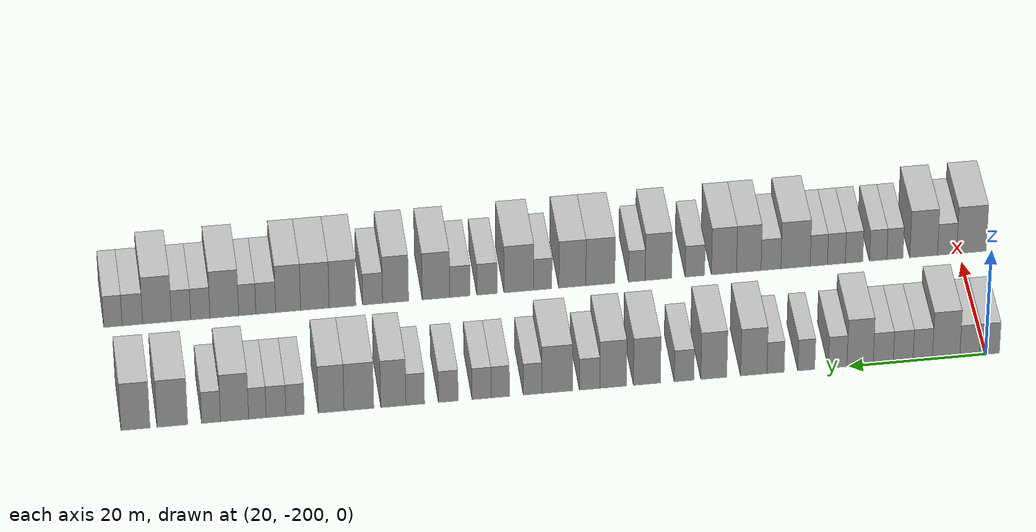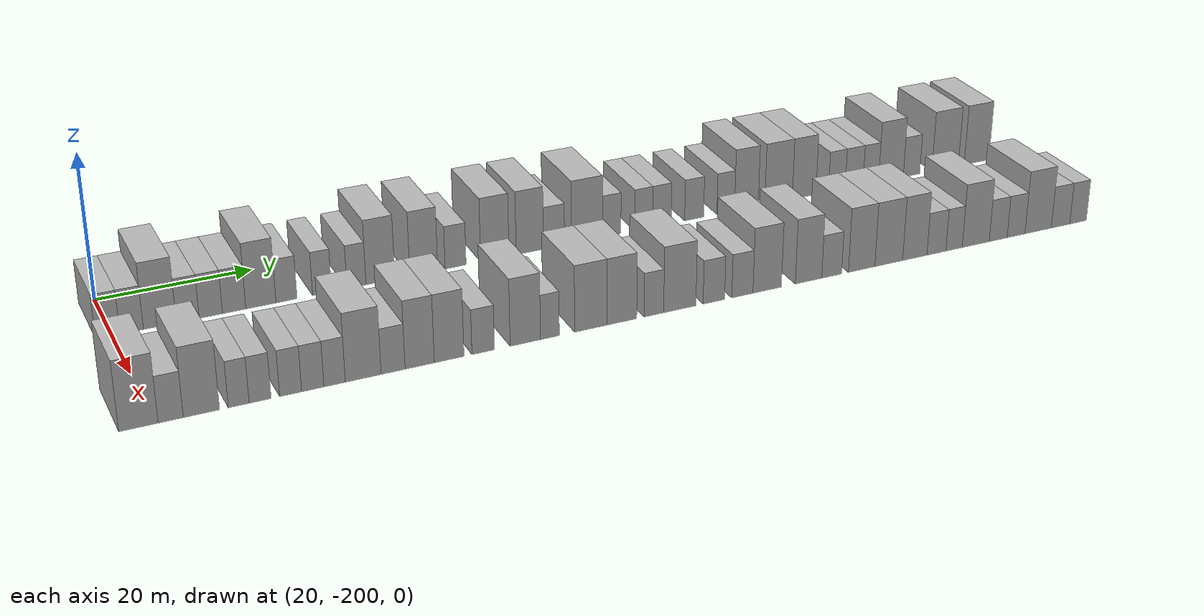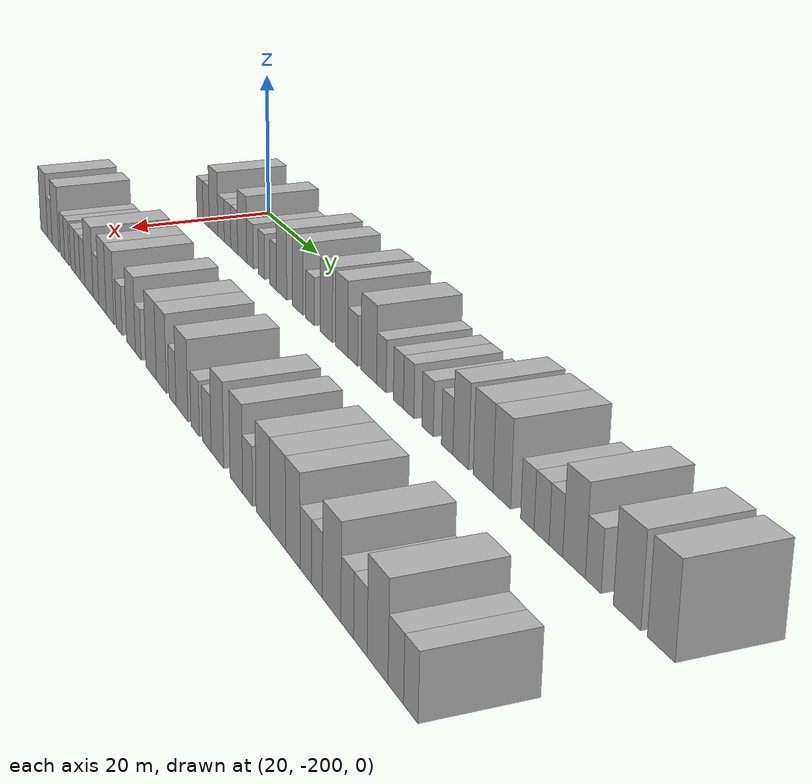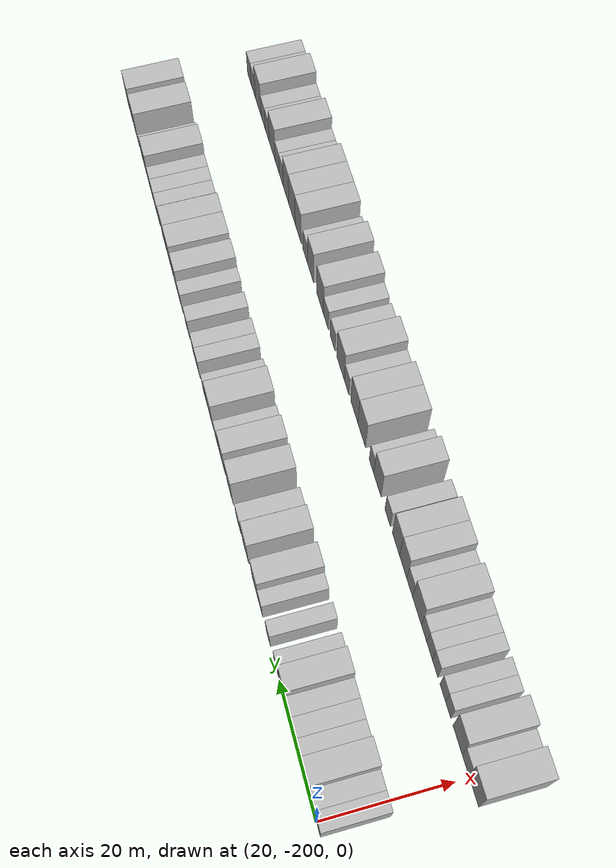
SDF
<sdf version="1.6">
 <world name="default">
  <model name="building_1">
   <static>1</static>
   <pose>25.0000 -200.5337 0 0.000000 0.000000 0.000000</pose>
   <link name="link">
    <pose>0 0 3.00 0 0 0</pose>
    <collision name="collision"><geometry><box><size>10.0000 2.9326 6.0000</size></box></geometry></collision>
    <visual name="visual">
     <cast_shadows>0</cast_shadows>
     <geometry><box><size>10.0000 2.9326 6.0000</size></box></geometry>
     <material>
      <script>
       <uri>model://HANNAS_wall/materials/scripts</uri>
       <uri>model://HANNAS_wall/materials/textures</uri>
       <name>vrc/HANNAS_wall</name>
      </script>
     </material>
    </visual>
   </link>
  </model>
  <model name="building_2">
   <static>1</static>
   <pose>25.0000 -197.6434 0 0.000000 0.000000 0.000000</pose>
   <link name="link">
    <pose>0 0 3.00 0 0 0</pose>
    <collision name="collision"><geometry><box><size>10.0000 2.8480 6.0000</size></box></geometry></collision>
    <visual name="visual">
     <cast_shadows>0</cast_shadows>
     <geometry><box><size>10.0000 2.8480 6.0000</size></box></geometry>
     <material>
      <script>
       <uri>model://HANNAS_wall/materials/scripts</uri>
       <uri>model://HANNAS_wall/materials/textures</uri>
       <name>vrc/HANNAS_wall</name>
      </script>
     </material>
    </visual>
   </link>
  </model>
  <model name="building_3">
   <static>1</static>
   <pose>25.0000 -194.2087 0 0.000000 0.000000 0.000000</pose>
   <link name="link">
    <pose>0 0 4.50 0 0 0</pose>
    <collision name="collision"><geometry><box><size>10.0000 4.0214 9.0000</size></box></geometry></collision>
    <visual name="visual">
     <cast_shadows>0</cast_shadows>
     <geometry><box><size>10.0000 4.0214 9.0000</size></box></geometry>
     <material>
      <script>
       <uri>model://HANNAS_wall/materials/scripts</uri>
       <uri>model://HANNAS_wall/materials/textures</uri>
       <name>vrc/HANNAS_wall</name>
      </script>
     </material>
    </visual>
   </link>
  </model>
  <model name="building_4">
   <static>1</static>
   <pose>25.0000 -190.7882 0 0.000000 0.000000 0.000000</pose>
   <link name="link">
    <pose>0 0 3.00 0 0 0</pose>
    <collision name="collision"><geometry><box><size>10.0000 2.8195 6.0000</size></box></geometry></collision>
    <visual name="visual">
     <cast_shadows>0</cast_shadows>
     <geometry><box><size>10.0000 2.8195 6.0000</size></box></geometry>
     <material>
      <script>
       <uri>model://HANNAS_wall/materials/scripts</uri>
       <uri>model://HANNAS_wall/materials/textures</uri>
       <name>vrc/HANNAS_wall</name>
      </script>
     </material>
    </visual>
   </link>
  </model>
  <model name="building_5">
   <static>1</static>
   <pose>25.0000 -187.9269 0 0.000000 0.000000 0.000000</pose>
   <link name="link">
    <pose>0 0 3.00 0 0 0</pose>
    <collision name="collision"><geometry><box><size>10.0000 2.9031 6.0000</size></box></geometry></collision>
    <visual name="visual">
     <cast_shadows>0</cast_shadows>
     <geometry><box><size>10.0000 2.9031 6.0000</size></box></geometry>
     <material>
      <script>
       <uri>model://HANNAS_wall/materials/scripts</uri>
       <uri>model://HANNAS_wall/materials/textures</uri>
       <name>vrc/HANNAS_wall</name>
      </script>
     </material>
    </visual>
   </link>
  </model>
  <model name="building_6">
   <static>1</static>
   <pose>25.0000 -185.0128 0 0.000000 0.000000 0.000000</pose>
   <link name="link">
    <pose>0 0 3.00 0 0 0</pose>
    <collision name="collision"><geometry><box><size>10.0000 2.9252 6.0000</size></box></geometry></collision>
    <visual name="visual">
     <cast_shadows>0</cast_shadows>
     <geometry><box><size>10.0000 2.9252 6.0000</size></box></geometry>
     <material>
      <script>
       <uri>model://HANNAS_wall/materials/scripts</uri>
       <uri>model://HANNAS_wall/materials/textures</uri>
       <name>vrc/HANNAS_wall</name>
      </script>
     </material>
    </visual>
   </link>
  </model>
  <model name="building_7">
   <static>1</static>
   <pose>25.0000 -181.6386 0 0.000000 0.000000 0.000000</pose>
   <link name="link">
    <pose>0 0 4.50 0 0 0</pose>
    <collision name="collision"><geometry><box><size>10.0000 3.8232 9.0000</size></box></geometry></collision>
    <visual name="visual">
     <cast_shadows>0</cast_shadows>
     <geometry><box><size>10.0000 3.8232 9.0000</size></box></geometry>
     <material>
      <script>
       <uri>model://HANNAS_wall/materials/scripts</uri>
       <uri>model://HANNAS_wall/materials/textures</uri>
       <name>vrc/HANNAS_wall</name>
      </script>
     </material>
    </visual>
   </link>
  </model>
  <model name="building_8">
   <static>1</static>
   <pose>25.0000 -178.3796 0 0.000000 0.000000 0.000000</pose>
   <link name="link">
    <pose>0 0 3.00 0 0 0</pose>
    <collision name="collision"><geometry><box><size>10.0000 2.6949 6.0000</size></box></geometry></collision>
    <visual name="visual">
     <cast_shadows>0</cast_shadows>
     <geometry><box><size>10.0000 2.6949 6.0000</size></box></geometry>
     <material>
      <script>
       <uri>model://HANNAS_wall/materials/scripts</uri>
       <uri>model://HANNAS_wall/materials/textures</uri>
       <name>vrc/HANNAS_wall</name>
      </script>
     </material>
    </visual>
   </link>
  </model>
  <model name="building_9">
   <static>1</static>
   <pose>25.0000 -173.8010 0 0.000000 0.000000 0.000000</pose>
   <link name="link">
    <pose>0 0 3.00 0 0 0</pose>
    <collision name="collision"><geometry><box><size>10.0000 2.4623 6.0000</size></box></geometry></collision>
    <visual name="visual">
     <cast_shadows>0</cast_shadows>
     <geometry><box><size>10.0000 2.4623 6.0000</size></box></geometry>
     <material>
      <script>
       <uri>model://HANNAS_wall/materials/scripts</uri>
       <uri>model://HANNAS_wall/materials/textures</uri>
       <name>vrc/HANNAS_wall</name>
      </script>
     </material>
    </visual>
   </link>
  </model>
  <model name="building_10">
   <static>1</static>
   <pose>25.0000 -169.3155 0 0.000000 0.000000 0.000000</pose>
   <link name="link">
    <pose>0 0 3.00 0 0 0</pose>
    <collision name="collision"><geometry><box><size>10.0000 2.5087 6.0000</size></box></geometry></collision>
    <visual name="visual">
     <cast_shadows>0</cast_shadows>
     <geometry><box><size>10.0000 2.5087 6.0000</size></box></geometry>
     <material>
      <script>
       <uri>model://HANNAS_wall/materials/scripts</uri>
       <uri>model://HANNAS_wall/materials/textures</uri>
       <name>vrc/HANNAS_wall</name>
      </script>
     </material>
    </visual>
   </link>
  </model>
  <model name="building_11">
   <static>1</static>
   <pose>25.0000 -166.1479 0 0.000000 0.000000 0.000000</pose>
   <link name="link">
    <pose>0 0 4.50 0 0 0</pose>
    <collision name="collision"><geometry><box><size>10.0000 3.8265 9.0000</size></box></geometry></collision>
    <visual name="visual">
     <cast_shadows>0</cast_shadows>
     <geometry><box><size>10.0000 3.8265 9.0000</size></box></geometry>
     <material>
      <script>
       <uri>model://HANNAS_wall/materials/scripts</uri>
       <uri>model://HANNAS_wall/materials/textures</uri>
       <name>vrc/HANNAS_wall</name>
      </script>
     </material>
    </visual>
   </link>
  </model>
  <model name="building_12">
   <static>1</static>
   <pose>25.0000 -160.3497 0 0.000000 0.000000 0.000000</pose>
   <link name="link">
    <pose>0 0 4.50 0 0 0</pose>
    <collision name="collision"><geometry><box><size>10.0000 3.7699 9.0000</size></box></geometry></collision>
    <visual name="visual">
     <cast_shadows>0</cast_shadows>
     <geometry><box><size>10.0000 3.7699 9.0000</size></box></geometry>
     <material>
      <script>
       <uri>model://HANNAS_wall/materials/scripts</uri>
       <uri>model://HANNAS_wall/materials/textures</uri>
       <name>vrc/HANNAS_wall</name>
      </script>
     </material>
    </visual>
   </link>
  </model>
  <model name="building_13">
   <static>1</static>
   <pose>25.0000 -156.0359 0 0.000000 0.000000 0.000000</pose>
   <link name="link">
    <pose>0 0 3.00 0 0 0</pose>
    <collision name="collision"><geometry><box><size>10.0000 2.8578 6.0000</size></box></geometry></collision>
    <visual name="visual">
     <cast_shadows>0</cast_shadows>
     <geometry><box><size>10.0000 2.8578 6.0000</size></box></geometry>
     <material>
      <script>
       <uri>model://HANNAS_wall/materials/scripts</uri>
       <uri>model://HANNAS_wall/materials/textures</uri>
       <name>vrc/HANNAS_wall</name>
      </script>
     </material>
    </visual>
   </link>
  </model>
  <model name="building_14">
   <static>1</static>
   <pose>25.0000 -150.6478 0 0.000000 0.000000 0.000000</pose>
   <link name="link">
    <pose>0 0 4.50 0 0 0</pose>
    <collision name="collision"><geometry><box><size>10.0000 3.9184 9.0000</size></box></geometry></collision>
    <visual name="visual">
     <cast_shadows>0</cast_shadows>
     <geometry><box><size>10.0000 3.9184 9.0000</size></box></geometry>
     <material>
      <script>
       <uri>model://HANNAS_wall/materials/scripts</uri>
       <uri>model://HANNAS_wall/materials/textures</uri>
       <name>vrc/HANNAS_wall</name>
      </script>
     </material>
    </visual>
   </link>
  </model>
  <model name="building_15">
   <static>1</static>
   <pose>25.0000 -145.7635 0 0.000000 0.000000 0.000000</pose>
   <link name="link">
    <pose>0 0 4.50 0 0 0</pose>
    <collision name="collision"><geometry><box><size>10.0000 3.8500 9.0000</size></box></geometry></collision>
    <visual name="visual">
     <cast_shadows>0</cast_shadows>
     <geometry><box><size>10.0000 3.8500 9.0000</size></box></geometry>
     <material>
      <script>
       <uri>model://HANNAS_wall/materials/scripts</uri>
       <uri>model://HANNAS_wall/materials/textures</uri>
       <name>vrc/HANNAS_wall</name>
      </script>
     </material>
    </visual>
   </link>
  </model>
  <model name="building_16">
   <static>1</static>
   <pose>25.0000 -142.3542 0 0.000000 0.000000 0.000000</pose>
   <link name="link">
    <pose>0 0 3.00 0 0 0</pose>
    <collision name="collision"><geometry><box><size>10.0000 2.9686 6.0000</size></box></geometry></collision>
    <visual name="visual">
     <cast_shadows>0</cast_shadows>
     <geometry><box><size>10.0000 2.9686 6.0000</size></box></geometry>
     <material>
      <script>
       <uri>model://HANNAS_wall/materials/scripts</uri>
       <uri>model://HANNAS_wall/materials/textures</uri>
       <name>vrc/HANNAS_wall</name>
      </script>
     </material>
    </visual>
   </link>
  </model>
  <model name="building_17">
   <static>1</static>
   <pose>25.0000 -137.6517 0 0.000000 0.000000 0.000000</pose>
   <link name="link">
    <pose>0 0 4.50 0 0 0</pose>
    <collision name="collision"><geometry><box><size>10.0000 4.4365 9.0000</size></box></geometry></collision>
    <visual name="visual">
     <cast_shadows>0</cast_shadows>
     <geometry><box><size>10.0000 4.4365 9.0000</size></box></geometry>
     <material>
      <script>
       <uri>model://HANNAS_wall/materials/scripts</uri>
       <uri>model://HANNAS_wall/materials/textures</uri>
       <name>vrc/HANNAS_wall</name>
      </script>
     </material>
    </visual>
   </link>
  </model>
  <model name="building_18">
   <static>1</static>
   <pose>25.0000 -134.0918 0 0.000000 0.000000 0.000000</pose>
   <link name="link">
    <pose>0 0 3.00 0 0 0</pose>
    <collision name="collision"><geometry><box><size>10.0000 2.6832 6.0000</size></box></geometry></collision>
    <visual name="visual">
     <cast_shadows>0</cast_shadows>
     <geometry><box><size>10.0000 2.6832 6.0000</size></box></geometry>
     <material>
      <script>
       <uri>model://HANNAS_wall/materials/scripts</uri>
       <uri>model://HANNAS_wall/materials/textures</uri>
       <name>vrc/HANNAS_wall</name>
      </script>
     </material>
    </visual>
   </link>
  </model>
  <model name="building_19">
   <static>1</static>
   <pose>25.0000 -129.4211 0 0.000000 0.000000 0.000000</pose>
   <link name="link">
    <pose>0 0 3.00 0 0 0</pose>
    <collision name="collision"><geometry><box><size>10.0000 2.6581 6.0000</size></box></geometry></collision>
    <visual name="visual">
     <cast_shadows>0</cast_shadows>
     <geometry><box><size>10.0000 2.6581 6.0000</size></box></geometry>
     <material>
      <script>
       <uri>model://HANNAS_wall/materials/scripts</uri>
       <uri>model://HANNAS_wall/materials/textures</uri>
       <name>vrc/HANNAS_wall</name>
      </script>
     </material>
    </visual>
   </link>
  </model>
  <model name="building_20">
   <static>1</static>
   <pose>25.0000 -126.7219 0 0.000000 0.000000 0.000000</pose>
   <link name="link">
    <pose>0 0 3.00 0 0 0</pose>
    <collision name="collision"><geometry><box><size>10.0000 2.7403 6.0000</size></box></geometry></collision>
    <visual name="visual">
     <cast_shadows>0</cast_shadows>
     <geometry><box><size>10.0000 2.7403 6.0000</size></box></geometry>
     <material>
      <script>
       <uri>model://HANNAS_wall/materials/scripts</uri>
       <uri>model://HANNAS_wall/materials/textures</uri>
       <name>vrc/HANNAS_wall</name>
      </script>
     </material>
    </visual>
   </link>
  </model>
  <model name="building_21">
   <static>1</static>
   <pose>25.0000 -121.9303 0 0.000000 0.000000 0.000000</pose>
   <link name="link">
    <pose>0 0 3.00 0 0 0</pose>
    <collision name="collision"><geometry><box><size>10.0000 2.8429 6.0000</size></box></geometry></collision>
    <visual name="visual">
     <cast_shadows>0</cast_shadows>
     <geometry><box><size>10.0000 2.8429 6.0000</size></box></geometry>
     <material>
      <script>
       <uri>model://HANNAS_wall/materials/scripts</uri>
       <uri>model://HANNAS_wall/materials/textures</uri>
       <name>vrc/HANNAS_wall</name>
      </script>
     </material>
    </visual>
   </link>
  </model>
  <model name="building_22">
   <static>1</static>
   <pose>25.0000 -117.1746 0 0.000000 0.000000 0.000000</pose>
   <link name="link">
    <pose>0 0 3.00 0 0 0</pose>
    <collision name="collision"><geometry><box><size>10.0000 2.6685 6.0000</size></box></geometry></collision>
    <visual name="visual">
     <cast_shadows>0</cast_shadows>
     <geometry><box><size>10.0000 2.6685 6.0000</size></box></geometry>
     <material>
      <script>
       <uri>model://HANNAS_wall/materials/scripts</uri>
       <uri>model://HANNAS_wall/materials/textures</uri>
       <name>vrc/HANNAS_wall</name>
      </script>
     </material>
    </visual>
   </link>
  </model>
  <model name="building_23">
   <static>1</static>
   <pose>25.0000 -114.0231 0 0.000000 0.000000 0.000000</pose>
   <link name="link">
    <pose>0 0 4.50 0 0 0</pose>
    <collision name="collision"><geometry><box><size>10.0000 3.6344 9.0000</size></box></geometry></collision>
    <visual name="visual">
     <cast_shadows>0</cast_shadows>
     <geometry><box><size>10.0000 3.6344 9.0000</size></box></geometry>
     <material>
      <script>
       <uri>model://HANNAS_wall/materials/scripts</uri>
       <uri>model://HANNAS_wall/materials/textures</uri>
       <name>vrc/HANNAS_wall</name>
      </script>
     </material>
    </visual>
   </link>
  </model>
  <model name="building_24">
   <static>1</static>
   <pose>25.0000 -109.0692 0 0.000000 0.000000 0.000000</pose>
   <link name="link">
    <pose>0 0 4.50 0 0 0</pose>
    <collision name="collision"><geometry><box><size>10.0000 4.2735 9.0000</size></box></geometry></collision>
    <visual name="visual">
     <cast_shadows>0</cast_shadows>
     <geometry><box><size>10.0000 4.2735 9.0000</size></box></geometry>
     <material>
      <script>
       <uri>model://HANNAS_wall/materials/scripts</uri>
       <uri>model://HANNAS_wall/materials/textures</uri>
       <name>vrc/HANNAS_wall</name>
      </script>
     </material>
    </visual>
   </link>
  </model>
  <model name="building_25">
   <static>1</static>
   <pose>25.0000 -105.0818 0 0.000000 0.000000 0.000000</pose>
   <link name="link">
    <pose>0 0 4.50 0 0 0</pose>
    <collision name="collision"><geometry><box><size>10.0000 3.7013 9.0000</size></box></geometry></collision>
    <visual name="visual">
     <cast_shadows>0</cast_shadows>
     <geometry><box><size>10.0000 3.7013 9.0000</size></box></geometry>
     <material>
      <script>
       <uri>model://HANNAS_wall/materials/scripts</uri>
       <uri>model://HANNAS_wall/materials/textures</uri>
       <name>vrc/HANNAS_wall</name>
      </script>
     </material>
    </visual>
   </link>
  </model>
  <model name="building_26">
   <static>1</static>
   <pose>25.0000 -99.9082 0 0.000000 0.000000 0.000000</pose>
   <link name="link">
    <pose>0 0 3.00 0 0 0</pose>
    <collision name="collision"><geometry><box><size>10.0000 2.6459 6.0000</size></box></geometry></collision>
    <visual name="visual">
     <cast_shadows>0</cast_shadows>
     <geometry><box><size>10.0000 2.6459 6.0000</size></box></geometry>
     <material>
      <script>
       <uri>model://HANNAS_wall/materials/scripts</uri>
       <uri>model://HANNAS_wall/materials/textures</uri>
       <name>vrc/HANNAS_wall</name>
      </script>
     </material>
    </visual>
   </link>
  </model>
  <model name="building_27">
   <static>1</static>
   <pose>25.0000 -97.1660 0 0.000000 0.000000 0.000000</pose>
   <link name="link">
    <pose>0 0 3.00 0 0 0</pose>
    <collision name="collision"><geometry><box><size>10.0000 2.8386 6.0000</size></box></geometry></collision>
    <visual name="visual">
     <cast_shadows>0</cast_shadows>
     <geometry><box><size>10.0000 2.8386 6.0000</size></box></geometry>
     <material>
      <script>
       <uri>model://HANNAS_wall/materials/scripts</uri>
       <uri>model://HANNAS_wall/materials/textures</uri>
       <name>vrc/HANNAS_wall</name>
      </script>
     </material>
    </visual>
   </link>
  </model>
  <model name="building_28">
   <static>1</static>
   <pose>25.0000 -94.4889 0 0.000000 0.000000 0.000000</pose>
   <link name="link">
    <pose>0 0 3.00 0 0 0</pose>
    <collision name="collision"><geometry><box><size>10.0000 2.5156 6.0000</size></box></geometry></collision>
    <visual name="visual">
     <cast_shadows>0</cast_shadows>
     <geometry><box><size>10.0000 2.5156 6.0000</size></box></geometry>
     <material>
      <script>
       <uri>model://HANNAS_wall/materials/scripts</uri>
       <uri>model://HANNAS_wall/materials/textures</uri>
       <name>vrc/HANNAS_wall</name>
      </script>
     </material>
    </visual>
   </link>
  </model>
  <model name="building_29">
   <static>1</static>
   <pose>25.0000 -91.2158 0 0.000000 0.000000 0.000000</pose>
   <link name="link">
    <pose>0 0 4.50 0 0 0</pose>
    <collision name="collision"><geometry><box><size>10.0000 4.0306 9.0000</size></box></geometry></collision>
    <visual name="visual">
     <cast_shadows>0</cast_shadows>
     <geometry><box><size>10.0000 4.0306 9.0000</size></box></geometry>
     <material>
      <script>
       <uri>model://HANNAS_wall/materials/scripts</uri>
       <uri>model://HANNAS_wall/materials/textures</uri>
       <name>vrc/HANNAS_wall</name>
      </script>
     </material>
    </visual>
   </link>
  </model>
  <model name="building_30">
   <static>1</static>
   <pose>25.0000 -87.8514 0 0.000000 0.000000 0.000000</pose>
   <link name="link">
    <pose>0 0 3.00 0 0 0</pose>
    <collision name="collision"><geometry><box><size>10.0000 2.6983 6.0000</size></box></geometry></collision>
    <visual name="visual">
     <cast_shadows>0</cast_shadows>
     <geometry><box><size>10.0000 2.6983 6.0000</size></box></geometry>
     <material>
      <script>
       <uri>model://HANNAS_wall/materials/scripts</uri>
       <uri>model://HANNAS_wall/materials/textures</uri>
       <name>vrc/HANNAS_wall</name>
      </script>
     </material>
    </visual>
   </link>
  </model>
  <model name="building_31">
   <static>1</static>
   <pose>25.0000 -82.3057 0 0.000000 0.000000 0.000000</pose>
   <link name="link">
    <pose>0 0 4.50 0 0 0</pose>
    <collision name="collision"><geometry><box><size>10.0000 4.3931 9.0000</size></box></geometry></collision>
    <visual name="visual">
     <cast_shadows>0</cast_shadows>
     <geometry><box><size>10.0000 4.3931 9.0000</size></box></geometry>
     <material>
      <script>
       <uri>model://HANNAS_wall/materials/scripts</uri>
       <uri>model://HANNAS_wall/materials/textures</uri>
       <name>vrc/HANNAS_wall</name>
      </script>
     </material>
    </visual>
   </link>
  </model>
  <model name="building_32">
   <static>1</static>
   <pose>25.0000 -77.0357 0 0.000000 0.000000 0.000000</pose>
   <link name="link">
    <pose>0 0 4.50 0 0 0</pose>
    <collision name="collision"><geometry><box><size>10.0000 4.1468 9.0000</size></box></geometry></collision>
    <visual name="visual">
     <cast_shadows>0</cast_shadows>
     <geometry><box><size>10.0000 4.1468 9.0000</size></box></geometry>
     <material>
      <script>
       <uri>model://HANNAS_wall/materials/scripts</uri>
       <uri>model://HANNAS_wall/materials/textures</uri>
       <name>vrc/HANNAS_wall</name>
      </script>
     </material>
    </visual>
   </link>
  </model>
  <model name="building_98">
   <static>1</static>
   <pose>47.0000 -201.8006 0 0.000000 0.000000 0.000000</pose>
   <link name="link">
    <pose>0 0 4.50 0 0 0</pose>
    <collision name="collision"><geometry><box><size>10.0000 4.3989 9.0000</size></box></geometry></collision>
    <visual name="visual">
     <cast_shadows>0</cast_shadows>
     <geometry><box><size>10.0000 4.3989 9.0000</size></box></geometry>
     <material>
      <script>
       <uri>model://HANNAS_wall/materials/scripts</uri>
       <uri>model://HANNAS_wall/materials/textures</uri>
       <name>vrc/HANNAS_wall</name>
      </script>
     </material>
    </visual>
   </link>
  </model>
  <model name="building_99">
   <static>1</static>
   <pose>47.0000 -198.1780 0 0.000000 0.000000 0.000000</pose>
   <link name="link">
    <pose>0 0 3.00 0 0 0</pose>
    <collision name="collision"><geometry><box><size>10.0000 2.8463 6.0000</size></box></geometry></collision>
    <visual name="visual">
     <cast_shadows>0</cast_shadows>
     <geometry><box><size>10.0000 2.8463 6.0000</size></box></geometry>
     <material>
      <script>
       <uri>model://HANNAS_wall/materials/scripts</uri>
       <uri>model://HANNAS_wall/materials/textures</uri>
       <name>vrc/HANNAS_wall</name>
      </script>
     </material>
    </visual>
   </link>
  </model>
  <model name="building_100">
   <static>1</static>
   <pose>47.0000 -194.6894 0 0.000000 0.000000 0.000000</pose>
   <link name="link">
    <pose>0 0 4.50 0 0 0</pose>
    <collision name="collision"><geometry><box><size>10.0000 4.1309 9.0000</size></box></geometry></collision>
    <visual name="visual">
     <cast_shadows>0</cast_shadows>
     <geometry><box><size>10.0000 4.1309 9.0000</size></box></geometry>
     <material>
      <script>
       <uri>model://HANNAS_wall/materials/scripts</uri>
       <uri>model://HANNAS_wall/materials/textures</uri>
       <name>vrc/HANNAS_wall</name>
      </script>
     </material>
    </visual>
   </link>
  </model>
  <model name="building_101">
   <static>1</static>
   <pose>47.0000 -190.4196 0 0.000000 0.000000 0.000000</pose>
   <link name="link">
    <pose>0 0 3.00 0 0 0</pose>
    <collision name="collision"><geometry><box><size>10.0000 2.4088 6.0000</size></box></geometry></collision>
    <visual name="visual">
     <cast_shadows>0</cast_shadows>
     <geometry><box><size>10.0000 2.4088 6.0000</size></box></geometry>
     <material>
      <script>
       <uri>model://HANNAS_wall/materials/scripts</uri>
       <uri>model://HANNAS_wall/materials/textures</uri>
       <name>vrc/HANNAS_wall</name>
      </script>
     </material>
    </visual>
   </link>
  </model>
  <model name="building_102">
   <static>1</static>
   <pose>47.0000 -187.9353 0 0.000000 0.000000 0.000000</pose>
   <link name="link">
    <pose>0 0 3.00 0 0 0</pose>
    <collision name="collision"><geometry><box><size>10.0000 2.5597 6.0000</size></box></geometry></collision>
    <visual name="visual">
     <cast_shadows>0</cast_shadows>
     <geometry><box><size>10.0000 2.5597 6.0000</size></box></geometry>
     <material>
      <script>
       <uri>model://HANNAS_wall/materials/scripts</uri>
       <uri>model://HANNAS_wall/materials/textures</uri>
       <name>vrc/HANNAS_wall</name>
      </script>
     </material>
    </visual>
   </link>
  </model>
  <model name="building_103">
   <static>1</static>
   <pose>47.0000 -184.3582 0 0.000000 0.000000 0.000000</pose>
   <link name="link">
    <pose>0 0 3.00 0 0 0</pose>
    <collision name="collision"><geometry><box><size>10.0000 2.5946 6.0000</size></box></geometry></collision>
    <visual name="visual">
     <cast_shadows>0</cast_shadows>
     <geometry><box><size>10.0000 2.5946 6.0000</size></box></geometry>
     <material>
      <script>
       <uri>model://HANNAS_wall/materials/scripts</uri>
       <uri>model://HANNAS_wall/materials/textures</uri>
       <name>vrc/HANNAS_wall</name>
      </script>
     </material>
    </visual>
   </link>
  </model>
  <model name="building_104">
   <static>1</static>
   <pose>47.0000 -181.7380 0 0.000000 0.000000 0.000000</pose>
   <link name="link">
    <pose>0 0 3.00 0 0 0</pose>
    <collision name="collision"><geometry><box><size>10.0000 2.6458 6.0000</size></box></geometry></collision>
    <visual name="visual">
     <cast_shadows>0</cast_shadows>
     <geometry><box><size>10.0000 2.6458 6.0000</size></box></geometry>
     <material>
      <script>
       <uri>model://HANNAS_wall/materials/scripts</uri>
       <uri>model://HANNAS_wall/materials/textures</uri>
       <name>vrc/HANNAS_wall</name>
      </script>
     </material>
    </visual>
   </link>
  </model>
  <model name="building_105">
   <static>1</static>
   <pose>47.0000 -179.1327 0 0.000000 0.000000 0.000000</pose>
   <link name="link">
    <pose>0 0 3.00 0 0 0</pose>
    <collision name="collision"><geometry><box><size>10.0000 2.5648 6.0000</size></box></geometry></collision>
    <visual name="visual">
     <cast_shadows>0</cast_shadows>
     <geometry><box><size>10.0000 2.5648 6.0000</size></box></geometry>
     <material>
      <script>
       <uri>model://HANNAS_wall/materials/scripts</uri>
       <uri>model://HANNAS_wall/materials/textures</uri>
       <name>vrc/HANNAS_wall</name>
      </script>
     </material>
    </visual>
   </link>
  </model>
  <model name="building_106">
   <static>1</static>
   <pose>47.0000 -175.6829 0 0.000000 0.000000 0.000000</pose>
   <link name="link">
    <pose>0 0 4.50 0 0 0</pose>
    <collision name="collision"><geometry><box><size>10.0000 4.3349 9.0000</size></box></geometry></collision>
    <visual name="visual">
     <cast_shadows>0</cast_shadows>
     <geometry><box><size>10.0000 4.3349 9.0000</size></box></geometry>
     <material>
      <script>
       <uri>model://HANNAS_wall/materials/scripts</uri>
       <uri>model://HANNAS_wall/materials/textures</uri>
       <name>vrc/HANNAS_wall</name>
      </script>
     </material>
    </visual>
   </link>
  </model>
  <model name="building_107">
   <static>1</static>
   <pose>47.0000 -172.0464 0 0.000000 0.000000 0.000000</pose>
   <link name="link">
    <pose>0 0 3.00 0 0 0</pose>
    <collision name="collision"><geometry><box><size>10.0000 2.9381 6.0000</size></box></geometry></collision>
    <visual name="visual">
     <cast_shadows>0</cast_shadows>
     <geometry><box><size>10.0000 2.9381 6.0000</size></box></geometry>
     <material>
      <script>
       <uri>model://HANNAS_wall/materials/scripts</uri>
       <uri>model://HANNAS_wall/materials/textures</uri>
       <name>vrc/HANNAS_wall</name>
      </script>
     </material>
    </visual>
   </link>
  </model>
  <model name="building_108">
   <static>1</static>
   <pose>47.0000 -168.7672 0 0.000000 0.000000 0.000000</pose>
   <link name="link">
    <pose>0 0 4.50 0 0 0</pose>
    <collision name="collision"><geometry><box><size>10.0000 3.6203 9.0000</size></box></geometry></collision>
    <visual name="visual">
     <cast_shadows>0</cast_shadows>
     <geometry><box><size>10.0000 3.6203 9.0000</size></box></geometry>
     <material>
      <script>
       <uri>model://HANNAS_wall/materials/scripts</uri>
       <uri>model://HANNAS_wall/materials/textures</uri>
       <name>vrc/HANNAS_wall</name>
      </script>
     </material>
    </visual>
   </link>
  </model>
  <model name="building_109">
   <static>1</static>
   <pose>47.0000 -165.1005 0 0.000000 0.000000 0.000000</pose>
   <link name="link">
    <pose>0 0 4.50 0 0 0</pose>
    <collision name="collision"><geometry><box><size>10.0000 3.7129 9.0000</size></box></geometry></collision>
    <visual name="visual">
     <cast_shadows>0</cast_shadows>
     <geometry><box><size>10.0000 3.7129 9.0000</size></box></geometry>
     <material>
      <script>
       <uri>model://HANNAS_wall/materials/scripts</uri>
       <uri>model://HANNAS_wall/materials/textures</uri>
       <name>vrc/HANNAS_wall</name>
      </script>
     </material>
    </visual>
   </link>
  </model>
  <model name="building_110">
   <static>1</static>
   <pose>47.0000 -160.8135 0 0.000000 0.000000 0.000000</pose>
   <link name="link">
    <pose>0 0 3.00 0 0 0</pose>
    <collision name="collision"><geometry><box><size>10.0000 2.8611 6.0000</size></box></geometry></collision>
    <visual name="visual">
     <cast_shadows>0</cast_shadows>
     <geometry><box><size>10.0000 2.8611 6.0000</size></box></geometry>
     <material>
      <script>
       <uri>model://HANNAS_wall/materials/scripts</uri>
       <uri>model://HANNAS_wall/materials/textures</uri>
       <name>vrc/HANNAS_wall</name>
      </script>
     </material>
    </visual>
   </link>
  </model>
  <model name="building_111">
   <static>1</static>
   <pose>47.0000 -155.4287 0 0.000000 0.000000 0.000000</pose>
   <link name="link">
    <pose>0 0 4.50 0 0 0</pose>
    <collision name="collision"><geometry><box><size>10.0000 3.9085 9.0000</size></box></geometry></collision>
    <visual name="visual">
     <cast_shadows>0</cast_shadows>
     <geometry><box><size>10.0000 3.9085 9.0000</size></box></geometry>
     <material>
      <script>
       <uri>model://HANNAS_wall/materials/scripts</uri>
       <uri>model://HANNAS_wall/materials/textures</uri>
       <name>vrc/HANNAS_wall</name>
      </script>
     </material>
    </visual>
   </link>
  </model>
  <model name="building_112">
   <static>1</static>
   <pose>47.0000 -152.2467 0 0.000000 0.000000 0.000000</pose>
   <link name="link">
    <pose>0 0 3.00 0 0 0</pose>
    <collision name="collision"><geometry><box><size>10.0000 2.4556 6.0000</size></box></geometry></collision>
    <visual name="visual">
     <cast_shadows>0</cast_shadows>
     <geometry><box><size>10.0000 2.4556 6.0000</size></box></geometry>
     <material>
      <script>
       <uri>model://HANNAS_wall/materials/scripts</uri>
       <uri>model://HANNAS_wall/materials/textures</uri>
       <name>vrc/HANNAS_wall</name>
      </script>
     </material>
    </visual>
   </link>
  </model>
  <model name="building_113">
   <static>1</static>
   <pose>47.0000 -146.8812 0 0.000000 0.000000 0.000000</pose>
   <link name="link">
    <pose>0 0 4.50 0 0 0</pose>
    <collision name="collision"><geometry><box><size>10.0000 4.2753 9.0000</size></box></geometry></collision>
    <visual name="visual">
     <cast_shadows>0</cast_shadows>
     <geometry><box><size>10.0000 4.2753 9.0000</size></box></geometry>
     <material>
      <script>
       <uri>model://HANNAS_wall/materials/scripts</uri>
       <uri>model://HANNAS_wall/materials/textures</uri>
       <name>vrc/HANNAS_wall</name>
      </script>
     </material>
    </visual>
   </link>
  </model>
  <model name="building_114">
   <static>1</static>
   <pose>47.0000 -142.7487 0 0.000000 0.000000 0.000000</pose>
   <link name="link">
    <pose>0 0 4.50 0 0 0</pose>
    <collision name="collision"><geometry><box><size>10.0000 3.9898 9.0000</size></box></geometry></collision>
    <visual name="visual">
     <cast_shadows>0</cast_shadows>
     <geometry><box><size>10.0000 3.9898 9.0000</size></box></geometry>
     <material>
      <script>
       <uri>model://HANNAS_wall/materials/scripts</uri>
       <uri>model://HANNAS_wall/materials/textures</uri>
       <name>vrc/HANNAS_wall</name>
      </script>
     </material>
    </visual>
   </link>
  </model>
  <model name="building_115">
   <static>1</static>
   <pose>47.0000 -138.4325 0 0.000000 0.000000 0.000000</pose>
   <link name="link">
    <pose>0 0 3.00 0 0 0</pose>
    <collision name="collision"><geometry><box><size>10.0000 2.6424 6.0000</size></box></geometry></collision>
    <visual name="visual">
     <cast_shadows>0</cast_shadows>
     <geometry><box><size>10.0000 2.6424 6.0000</size></box></geometry>
     <material>
      <script>
       <uri>model://HANNAS_wall/materials/scripts</uri>
       <uri>model://HANNAS_wall/materials/textures</uri>
       <name>vrc/HANNAS_wall</name>
      </script>
     </material>
    </visual>
   </link>
  </model>
  <model name="building_116">
   <static>1</static>
   <pose>47.0000 -134.9033 0 0.000000 0.000000 0.000000</pose>
   <link name="link">
    <pose>0 0 4.50 0 0 0</pose>
    <collision name="collision"><geometry><box><size>10.0000 4.4160 9.0000</size></box></geometry></collision>
    <visual name="visual">
     <cast_shadows>0</cast_shadows>
     <geometry><box><size>10.0000 4.4160 9.0000</size></box></geometry>
     <material>
      <script>
       <uri>model://HANNAS_wall/materials/scripts</uri>
       <uri>model://HANNAS_wall/materials/textures</uri>
       <name>vrc/HANNAS_wall</name>
      </script>
     </material>
    </visual>
   </link>
  </model>
  <model name="building_117">
   <static>1</static>
   <pose>47.0000 -130.2047 0 0.000000 0.000000 0.000000</pose>
   <link name="link">
    <pose>0 0 3.00 0 0 0</pose>
    <collision name="collision"><geometry><box><size>10.0000 2.9813 6.0000</size></box></geometry></collision>
    <visual name="visual">
     <cast_shadows>0</cast_shadows>
     <geometry><box><size>10.0000 2.9813 6.0000</size></box></geometry>
     <material>
      <script>
       <uri>model://HANNAS_wall/materials/scripts</uri>
       <uri>model://HANNAS_wall/materials/textures</uri>
       <name>vrc/HANNAS_wall</name>
      </script>
     </material>
    </visual>
   </link>
  </model>
  <model name="building_118">
   <static>1</static>
   <pose>47.0000 -126.2289 0 0.000000 0.000000 0.000000</pose>
   <link name="link">
    <pose>0 0 3.00 0 0 0</pose>
    <collision name="collision"><geometry><box><size>10.0000 2.9702 6.0000</size></box></geometry></collision>
    <visual name="visual">
     <cast_shadows>0</cast_shadows>
     <geometry><box><size>10.0000 2.9702 6.0000</size></box></geometry>
     <material>
      <script>
       <uri>model://HANNAS_wall/materials/scripts</uri>
       <uri>model://HANNAS_wall/materials/textures</uri>
       <name>vrc/HANNAS_wall</name>
      </script>
     </material>
    </visual>
   </link>
  </model>
  <model name="building_119">
   <static>1</static>
   <pose>47.0000 -122.7245 0 0.000000 0.000000 0.000000</pose>
   <link name="link">
    <pose>0 0 4.50 0 0 0</pose>
    <collision name="collision"><geometry><box><size>10.0000 4.0387 9.0000</size></box></geometry></collision>
    <visual name="visual">
     <cast_shadows>0</cast_shadows>
     <geometry><box><size>10.0000 4.0387 9.0000</size></box></geometry>
     <material>
      <script>
       <uri>model://HANNAS_wall/materials/scripts</uri>
       <uri>model://HANNAS_wall/materials/textures</uri>
       <name>vrc/HANNAS_wall</name>
      </script>
     </material>
    </visual>
   </link>
  </model>
  <model name="building_120">
   <static>1</static>
   <pose>47.0000 -116.8010 0 0.000000 0.000000 0.000000</pose>
   <link name="link">
    <pose>0 0 4.50 0 0 0</pose>
    <collision name="collision"><geometry><box><size>10.0000 3.8083 9.0000</size></box></geometry></collision>
    <visual name="visual">
     <cast_shadows>0</cast_shadows>
     <geometry><box><size>10.0000 3.8083 9.0000</size></box></geometry>
     <material>
      <script>
       <uri>model://HANNAS_wall/materials/scripts</uri>
       <uri>model://HANNAS_wall/materials/textures</uri>
       <name>vrc/HANNAS_wall</name>
      </script>
     </material>
    </visual>
   </link>
  </model>
  <model name="building_121">
   <static>1</static>
   <pose>47.0000 -113.4453 0 0.000000 0.000000 0.000000</pose>
   <link name="link">
    <pose>0 0 3.00 0 0 0</pose>
    <collision name="collision"><geometry><box><size>10.0000 2.9032 6.0000</size></box></geometry></collision>
    <visual name="visual">
     <cast_shadows>0</cast_shadows>
     <geometry><box><size>10.0000 2.9032 6.0000</size></box></geometry>
     <material>
      <script>
       <uri>model://HANNAS_wall/materials/scripts</uri>
       <uri>model://HANNAS_wall/materials/textures</uri>
       <name>vrc/HANNAS_wall</name>
      </script>
     </material>
    </visual>
   </link>
  </model>
  <model name="building_122">
   <static>1</static>
   <pose>47.0000 -109.0428 0 0.000000 0.000000 0.000000</pose>
   <link name="link">
    <pose>0 0 4.50 0 0 0</pose>
    <collision name="collision"><geometry><box><size>10.0000 3.9017 9.0000</size></box></geometry></collision>
    <visual name="visual">
     <cast_shadows>0</cast_shadows>
     <geometry><box><size>10.0000 3.9017 9.0000</size></box></geometry>
     <material>
      <script>
       <uri>model://HANNAS_wall/materials/scripts</uri>
       <uri>model://HANNAS_wall/materials/textures</uri>
       <name>vrc/HANNAS_wall</name>
      </script>
     </material>
    </visual>
   </link>
  </model>
  <model name="building_123">
   <static>1</static>
   <pose>47.0000 -105.0116 0 0.000000 0.000000 0.000000</pose>
   <link name="link">
    <pose>0 0 4.50 0 0 0</pose>
    <collision name="collision"><geometry><box><size>10.0000 4.1608 9.0000</size></box></geometry></collision>
    <visual name="visual">
     <cast_shadows>0</cast_shadows>
     <geometry><box><size>10.0000 4.1608 9.0000</size></box></geometry>
     <material>
      <script>
       <uri>model://HANNAS_wall/materials/scripts</uri>
       <uri>model://HANNAS_wall/materials/textures</uri>
       <name>vrc/HANNAS_wall</name>
      </script>
     </material>
    </visual>
   </link>
  </model>
  <model name="building_124">
   <static>1</static>
   <pose>47.0000 -101.1028 0 0.000000 0.000000 0.000000</pose>
   <link name="link">
    <pose>0 0 4.50 0 0 0</pose>
    <collision name="collision"><geometry><box><size>10.0000 3.6569 9.0000</size></box></geometry></collision>
    <visual name="visual">
     <cast_shadows>0</cast_shadows>
     <geometry><box><size>10.0000 3.6569 9.0000</size></box></geometry>
     <material>
      <script>
       <uri>model://HANNAS_wall/materials/scripts</uri>
       <uri>model://HANNAS_wall/materials/textures</uri>
       <name>vrc/HANNAS_wall</name>
      </script>
     </material>
    </visual>
   </link>
  </model>
  <model name="building_125">
   <static>1</static>
   <pose>47.0000 -97.8318 0 0.000000 0.000000 0.000000</pose>
   <link name="link">
    <pose>0 0 3.00 0 0 0</pose>
    <collision name="collision"><geometry><box><size>10.0000 2.8851 6.0000</size></box></geometry></collision>
    <visual name="visual">
     <cast_shadows>0</cast_shadows>
     <geometry><box><size>10.0000 2.8851 6.0000</size></box></geometry>
     <material>
      <script>
       <uri>model://HANNAS_wall/materials/scripts</uri>
       <uri>model://HANNAS_wall/materials/textures</uri>
       <name>vrc/HANNAS_wall</name>
      </script>
     </material>
    </visual>
   </link>
  </model>
  <model name="building_126">
   <static>1</static>
   <pose>47.0000 -95.1345 0 0.000000 0.000000 0.000000</pose>
   <link name="link">
    <pose>0 0 3.00 0 0 0</pose>
    <collision name="collision"><geometry><box><size>10.0000 2.5096 6.0000</size></box></geometry></collision>
    <visual name="visual">
     <cast_shadows>0</cast_shadows>
     <geometry><box><size>10.0000 2.5096 6.0000</size></box></geometry>
     <material>
      <script>
       <uri>model://HANNAS_wall/materials/scripts</uri>
       <uri>model://HANNAS_wall/materials/textures</uri>
       <name>vrc/HANNAS_wall</name>
      </script>
     </material>
    </visual>
   </link>
  </model>
  <model name="building_127">
   <static>1</static>
   <pose>47.0000 -91.7899 0 0.000000 0.000000 0.000000</pose>
   <link name="link">
    <pose>0 0 4.50 0 0 0</pose>
    <collision name="collision"><geometry><box><size>10.0000 4.1796 9.0000</size></box></geometry></collision>
    <visual name="visual">
     <cast_shadows>0</cast_shadows>
     <geometry><box><size>10.0000 4.1796 9.0000</size></box></geometry>
     <material>
      <script>
       <uri>model://HANNAS_wall/materials/scripts</uri>
       <uri>model://HANNAS_wall/materials/textures</uri>
       <name>vrc/HANNAS_wall</name>
      </script>
     </material>
    </visual>
   </link>
  </model>
  <model name="building_128">
   <static>1</static>
   <pose>47.0000 -88.2982 0 0.000000 0.000000 0.000000</pose>
   <link name="link">
    <pose>0 0 3.00 0 0 0</pose>
    <collision name="collision"><geometry><box><size>10.0000 2.8038 6.0000</size></box></geometry></collision>
    <visual name="visual">
     <cast_shadows>0</cast_shadows>
     <geometry><box><size>10.0000 2.8038 6.0000</size></box></geometry>
     <material>
      <script>
       <uri>model://HANNAS_wall/materials/scripts</uri>
       <uri>model://HANNAS_wall/materials/textures</uri>
       <name>vrc/HANNAS_wall</name>
      </script>
     </material>
    </visual>
   </link>
  </model>
  <model name="building_129">
   <static>1</static>
   <pose>47.0000 -85.4925 0 0.000000 0.000000 0.000000</pose>
   <link name="link">
    <pose>0 0 3.00 0 0 0</pose>
    <collision name="collision"><geometry><box><size>10.0000 2.8075 6.0000</size></box></geometry></collision>
    <visual name="visual">
     <cast_shadows>0</cast_shadows>
     <geometry><box><size>10.0000 2.8075 6.0000</size></box></geometry>
     <material>
      <script>
       <uri>model://HANNAS_wall/materials/scripts</uri>
       <uri>model://HANNAS_wall/materials/textures</uri>
       <name>vrc/HANNAS_wall</name>
      </script>
     </material>
    </visual>
   </link>
  </model>
  <model name="building_130">
   <static>1</static>
   <pose>47.0000 -81.9916 0 0.000000 0.000000 0.000000</pose>
   <link name="link">
    <pose>0 0 4.50 0 0 0</pose>
    <collision name="collision"><geometry><box><size>10.0000 4.1943 9.0000</size></box></geometry></collision>
    <visual name="visual">
     <cast_shadows>0</cast_shadows>
     <geometry><box><size>10.0000 4.1943 9.0000</size></box></geometry>
     <material>
      <script>
       <uri>model://HANNAS_wall/materials/scripts</uri>
       <uri>model://HANNAS_wall/materials/textures</uri>
       <name>vrc/HANNAS_wall</name>
      </script>
     </material>
    </visual>
   </link>
  </model>
  <model name="building_131">
   <static>1</static>
   <pose>47.0000 -78.4110 0 0.000000 0.000000 0.000000</pose>
   <link name="link">
    <pose>0 0 3.00 0 0 0</pose>
    <collision name="collision"><geometry><box><size>10.0000 2.9669 6.0000</size></box></geometry></collision>
    <visual name="visual">
     <cast_shadows>0</cast_shadows>
     <geometry><box><size>10.0000 2.9669 6.0000</size></box></geometry>
     <material>
      <script>
       <uri>model://HANNAS_wall/materials/scripts</uri>
       <uri>model://HANNAS_wall/materials/textures</uri>
       <name>vrc/HANNAS_wall</name>
      </script>
     </material>
    </visual>
   </link>
  </model>
  <model name="building_132">
   <static>1</static>
   <pose>47.0000 -75.5902 0 0.000000 0.000000 0.000000</pose>
   <link name="link">
    <pose>0 0 3.00 0 0 0</pose>
    <collision name="collision"><geometry><box><size>10.0000 2.6747 6.0000</size></box></geometry></collision>
    <visual name="visual">
     <cast_shadows>0</cast_shadows>
     <geometry><box><size>10.0000 2.6747 6.0000</size></box></geometry>
     <material>
      <script>
       <uri>model://HANNAS_wall/materials/scripts</uri>
       <uri>model://HANNAS_wall/materials/textures</uri>
       <name>vrc/HANNAS_wall</name>
      </script>
     </material>
    </visual>
   </link>
  </model>
 </world>
</sdf>
